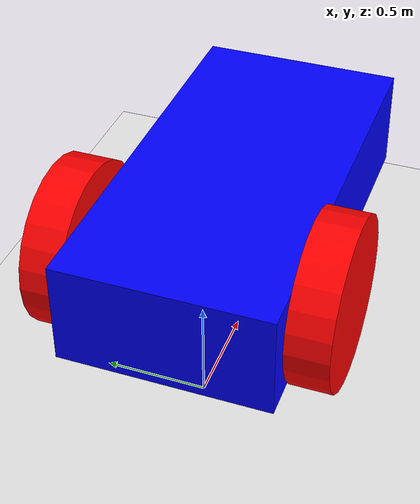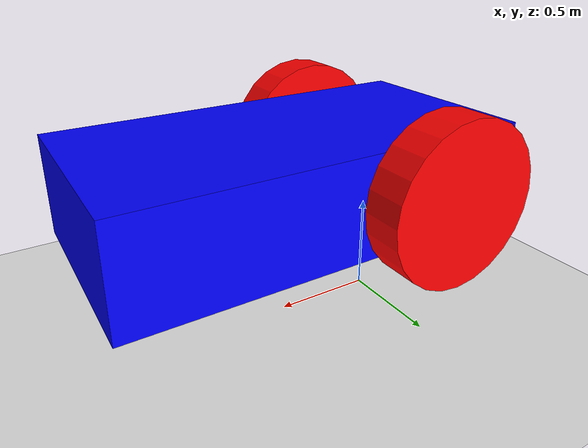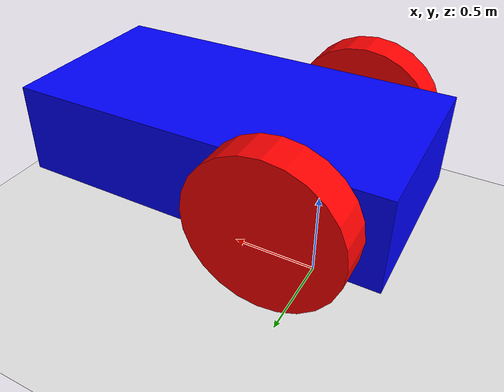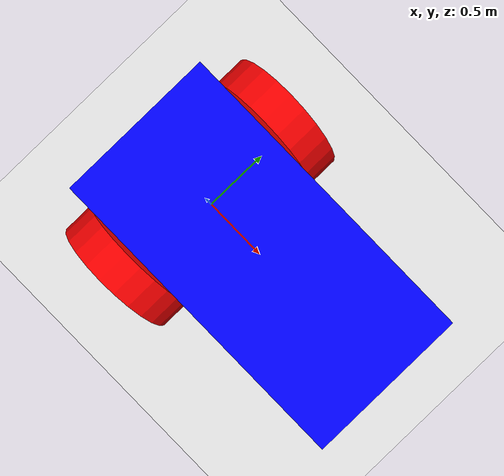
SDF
<sdf version="1.10">
  <world name="empty">
    <physics name="1ms" type="ignored">
      <max_step_size>0.001</max_step_size>
      <real_time_factor>1.0</real_time_factor>
    </physics>
    <plugin filename="gz-sim-physics-system" name="gz::sim::systems::Physics" />
    <plugin filename="gz-sim-user-commands-system" name="gz::sim::systems::UserCommands" />
    <plugin filename="gz-sim-scene-broadcaster-system" name="gz::sim::systems::SceneBroadcaster" />
    <plugin filename="gz-sim-contact-system" name="gz::sim::systems::Contact" />

    <light type="directional" name="sun">
      <cast_shadows>true</cast_shadows>
      <pose>0 0 10 0 0 0</pose>
      <diffuse>0.8 0.8 0.8 1</diffuse>
      <specular>0.2 0.2 0.2 1</specular>
      <attenuation>
        <range>1000</range>
        <constant>0.9</constant>
        <linear>0.01</linear>
        <quadratic>0.001</quadratic>
      </attenuation>
      <direction>-0.5 0.1 -0.9</direction>
    </light>

    <model name="ground_plane">
      <static>true</static>
      <link name="link">
        <collision name="collision">
          <geometry>
            <plane>
              <normal>0 0 1</normal>
              <size>100 100</size>
            </plane>
          </geometry>
        </collision>
        <visual name="visual">
          <geometry>
            <plane>
              <normal>0 0 1</normal>
              <size>100 100</size>
            </plane>
          </geometry>
          <material>
            <ambient>0.9 0.9 0.9 1</ambient>
            <diffuse>0.9 0.9 0.9 1</diffuse>
            <specular>0.9 0.9 0.9 1</specular>
          </material>
        </visual>
      </link>
    </model>

    <model name="penguin">
      <self_collide>true</self_collide>
      <pose>0 0 0.35 0 0 0</pose>
      <include merge="true">
        <uri>model://models/penguin</uri>
      </include>
    </model>
  </world>
</sdf>

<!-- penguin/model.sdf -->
<sdf version="1.8">
  <model name="penguin">
    <link name="chassis">
      <pose relative_to="__model__">0.5 0 0.4 0 0 0</pose>
      <inertial>
        <mass>1.14395</mass>
        <inertia>
          <ixx>0.095329</ixx>
          <ixy>0</ixy>
          <ixz>0</ixz>
          <iyy>0.381317</iyy>
          <iyz>0</iyz>
          <izz>0.476646</izz>
        </inertia>
      </inertial>
      <visual name='visual'>
        <geometry>
          <box>
            <size>2.0 1.0 0.5</size>
          </box>
        </geometry>
        <material>
          <ambient>0.0 0.0 1.0 1</ambient>
          <diffuse>0.0 0.0 1.0 1</diffuse>
          <specular>0.0 0.0 1.0 1</specular>
        </material>
      </visual>
      <collision name='collision'>
        <geometry>
          <box>
            <size>2.0 1.0 0.5</size>
          </box>
        </geometry>
      </collision>
    </link>
    <link name='left_wheel'>
      <pose relative_to="chassis">-0.5 0.6 0 -1.5707 0 0</pose>
      <inertial>
        <mass>1</mass>
        <inertia>
          <ixx>0.043333</ixx>
          <ixy>0</ixy>
          <ixz>0</ixz>
          <iyy>0.043333</iyy>
          <iyz>0</iyz>
          <izz>0.08</izz>
        </inertia>
      </inertial>
      <visual name='visual'>
        <geometry>
          <cylinder>
            <radius>0.4</radius>
            <length>0.2</length>
          </cylinder>
        </geometry>
        <material>
          <ambient>1.0 0.0 0.0 1</ambient>
          <diffuse>1.0 0.0 0.0 1</diffuse>
          <specular>1.0 0.0 0.0 1</specular>
        </material>
      </visual>
      <collision name='collision'>
        <geometry>
          <cylinder>
            <radius>0.4</radius>
            <length>0.2</length>
          </cylinder>
        </geometry>
      </collision>
    </link>
    <link name='right_wheel'>
      <pose relative_to="chassis">-0.5 -0.6 0 -1.5707 0 0</pose> <!--angles
      are in radian-->
      <inertial>
        <mass>1</mass>
        <inertia>
          <ixx>0.043333</ixx>
          <ixy>0</ixy>
          <ixz>0</ixz>
          <iyy>0.043333</iyy>
          <iyz>0</iyz>
          <izz>0.08</izz>
        </inertia>
      </inertial>
      <visual name='visual'>
        <geometry>
          <cylinder>
            <radius>0.4</radius>
            <length>0.2</length>
          </cylinder>
        </geometry>
        <material>
          <ambient>1.0 0.0 0.0 1</ambient>
          <diffuse>1.0 0.0 0.0 1</diffuse>
          <specular>1.0 0.0 0.0 1</specular>
        </material>
      </visual>
      <collision name='collision'>
        <geometry>
          <cylinder>
            <radius>0.4</radius>
            <length>0.2</length>
          </cylinder>
        </geometry>
      </collision>
    </link>
    <frame name="caster_frame" attached_to='chassis'>
      <pose>0.8 0 -0.2 0 0 0</pose>
    </frame>
    <link name='caster'>
      <pose relative_to='caster_frame' />
      <inertial>
        <mass>1</mass>
        <inertia>
          <ixx>0.016</ixx>
          <ixy>0</ixy>
          <ixz>0</ixz>
          <iyy>0.016</iyy>
          <iyz>0</iyz>
          <izz>0.016</izz>
        </inertia>
      </inertial>
      <visual name='visual'>
        <geometry>
          <sphere>
            <radius>0.2</radius>
          </sphere>
        </geometry>
        <material>
          <ambient>0.0 1 0.0 1</ambient>
          <diffuse>0.0 1 0.0 1</diffuse>
          <specular>0.0 1 0.0 1</specular>
        </material>
      </visual>
      <collision name='collision'>
        <geometry>
          <sphere>
            <radius>0.2</radius>
          </sphere>
        </geometry>
      </collision>
    </link>
    <joint name='left_wheel_joint' type='revolute'>
      <pose relative_to='left_wheel' />
      <parent>chassis</parent>
      <child>left_wheel</child>
      <axis>
        <xyz expressed_in='__model__'>0 1 0</xyz>
        <limit>
          <lower>-1.79769e+308</lower>
          <upper>1.79769e+308</upper>
        </limit>
      </axis>
    </joint>
    <joint name='right_wheel_joint' type='revolute'>
      <pose relative_to='right_wheel' />
      <parent>chassis</parent>
      <child>right_wheel</child>
      <axis>
        <xyz expressed_in='__model__'>0 1 0</xyz>
        <limit>
          <lower>-1.79769e+308</lower>
          <upper>1.79769e+308</upper>
        </limit>
      </axis>
    </joint>
    <joint name='caster_wheel' type='ball'>
      <parent>chassis</parent>
      <child>caster</child>
    </joint>

    <plugin
      filename="gz-sim-diff-drive-system" name="gz::sim::systems::DiffDrive">
      <left_joint>left_wheel_joint</left_joint>
      <right_joint>right_wheel_joint</right_joint>
      <wheel_separation>1.2</wheel_separation>
      <wheel_radius>0.4</wheel_radius>
      <odom_publish_frequency>1</odom_publish_frequency>
      <topic>cmd_vel</topic>
    </plugin>
  </model>
</sdf>
